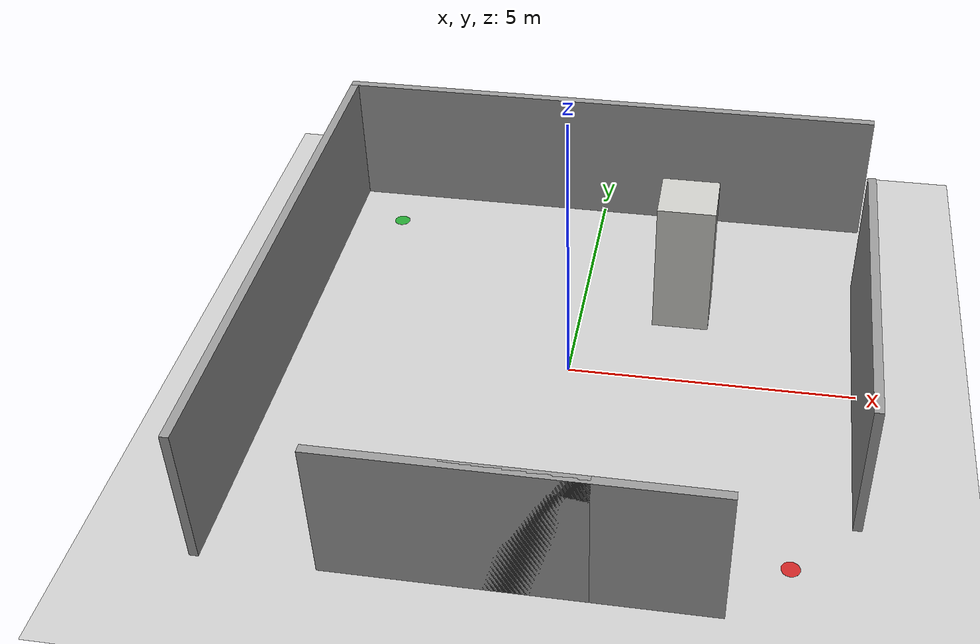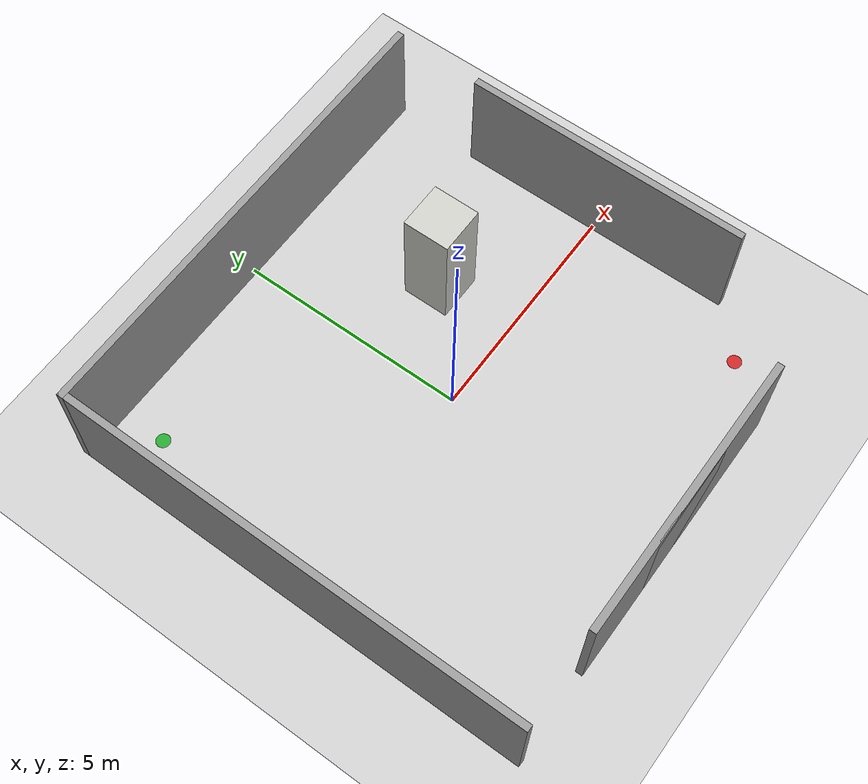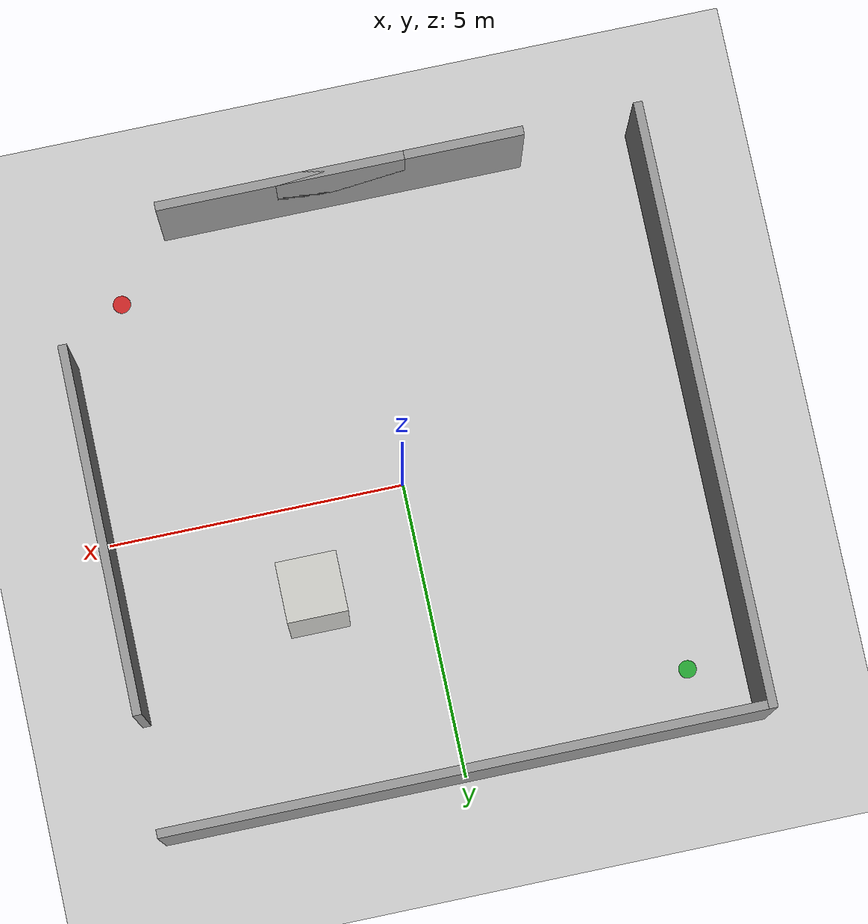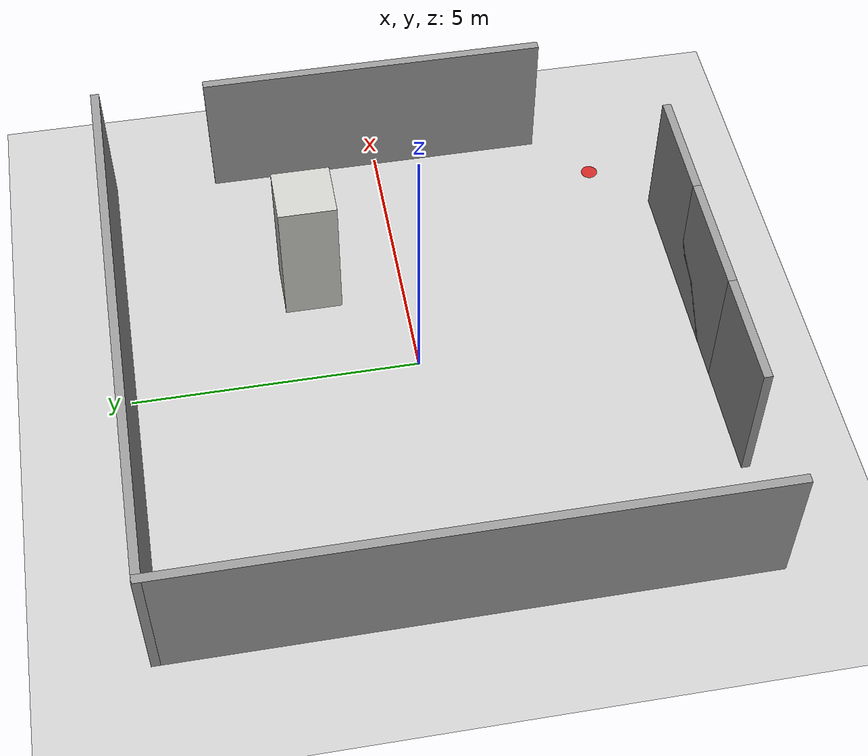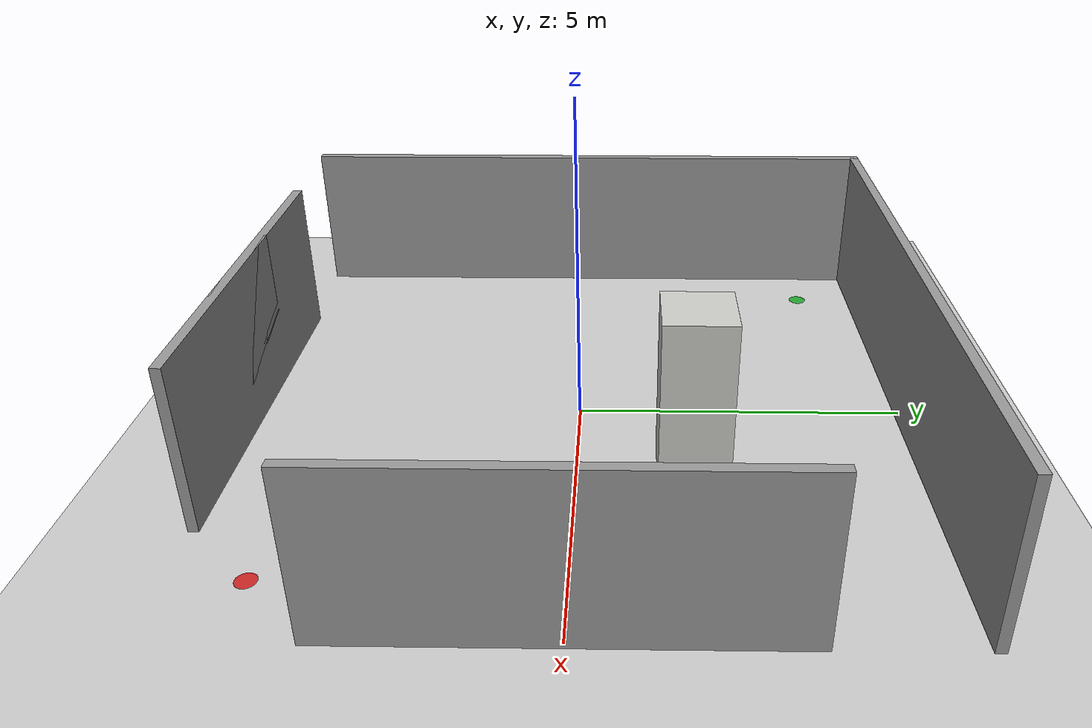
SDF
<sdf version="1.6">
 <world name="default">
  <light name="sun" type="directional">
   <pose>0 0 10 0 -0 0</pose>
   <diffuse>0.8 0.8 0.8 1</diffuse>
   <specular>0.2 0.2 0.2 1</specular>
   <attenuation>
    <range>1000</range>
    <constant>0.9</constant>
    <linear>0.01</linear>
    <quadratic>0.001</quadratic>
   </attenuation>
   <direction>-0.5 0.1 -0.9</direction>
  </light>
  <model name="ground_plane">
   <static>1</static>
   <link name="link">
    <collision name="collision">
     <geometry><plane><normal>0 0 1</normal><size>100 100</size></plane></geometry>
     <surface><friction><ode><mu>100</mu><mu2>50</mu2></ode></friction></surface>
    </collision>
    <visual name="visual">
     <cast_shadows>0</cast_shadows>
     <geometry><plane><normal>0 0 1</normal><size>100 100</size></plane></geometry>
     <material>
      <script><uri>file://media/materials/scripts/gazebo.material</uri><name>Gazebo/Grey</name></script>
     </material>
    </visual>
   </link>
  </model>
  <gravity>0 0 -9.8</gravity>
  <magnetic_field>6e-06 2.3e-05 -4.2e-05</magnetic_field>
  <atmosphere type="adiabatic"/>
  <physics name="default_physics" default="0" type="ode">
   <max_step_size>0.001</max_step_size>
   <real_time_factor>1</real_time_factor>
   <real_time_update_rate>1000</real_time_update_rate>
  </physics>
  <scene><ambient>0.4 0.4 0.4 1</ambient><background>0.7 0.7 0.7 1</background><shadows>1</shadows></scene>
  <spherical_coordinates>
   <surface_model>EARTH_WGS84</surface_model>
   <latitude_deg>0</latitude_deg>
   <longitude_deg>0</longitude_deg>
   <elevation>0</elevation>
   <heading_deg>0</heading_deg>
  </spherical_coordinates>
  <model name="Untitled">
   <link name="Wall_0">
    <collision name="Wall_0_Collision">
     <geometry><box><size>10.15 0.15 2.5</size></box></geometry>
     <pose>0 0 1.25 0 -0 0</pose>
    </collision>
    <visual name="Wall_0_Visual">
     <pose>0 0 1.25 0 -0 0</pose>
     <geometry><box><size>10.15 0.15 2.5</size></box></geometry>
     <material>
      <script><uri>file://media/materials/scripts/gazebo.material</uri><name>Gazebo/Grey</name></script>
      <ambient>1 1 1 1</ambient>
     </material>
     <meta><layer>0</layer></meta>
    </visual>
    <pose>-5 0 0 0 -0 -1.5708</pose>
   </link>
   <link name="Wall_1">
    <collision name="Wall_1_Collision">
     <geometry><box><size>6.15 0.15 2.5</size></box></geometry>
     <pose>0 0 1.25 0 -0 0</pose>
    </collision>
    <visual name="Wall_1_Visual">
     <pose>0 0 1.25 0 -0 0</pose>
     <geometry><box><size>6.15 0.15 2.5</size></box></geometry>
     <material>
      <script><uri>file://media/materials/scripts/gazebo.material</uri><name>Gazebo/Grey</name></script>
      <ambient>1 1 1 1</ambient>
     </material>
     <meta><layer>0</layer></meta>
    </visual>
    <pose>0 -5 0 0 -0 0</pose>
   </link>
   <link name="Wall_2">
    <collision name="Wall_2_Collision">
     <geometry><box><size>6.15 0.15 2.5</size></box></geometry>
     <pose>0 0 1.25 0 -0 0</pose>
    </collision>
    <visual name="Wall_2_Visual">
     <pose>0 0 1.25 0 -0 0</pose>
     <geometry><box><size>6.15 0.15 2.5</size></box></geometry>
     <material>
      <script><uri>file://media/materials/scripts/gazebo.material</uri><name>Gazebo/Grey</name></script>
      <ambient>1 1 1 1</ambient>
     </material>
     <meta><layer>0</layer></meta>
    </visual>
    <pose>5 0 0 0 -0 1.5708</pose>
   </link>
   <link name="Wall_3">
    <collision name="Wall_3_Collision">
     <geometry><box><size>10.15 0.15 2.5</size></box></geometry>
     <pose>0 0 1.25 0 -0 0</pose>
    </collision>
    <visual name="Wall_3_Visual">
     <pose>0 0 1.25 0 -0 0</pose>
     <geometry><box><size>10.15 0.15 2.5</size></box></geometry>
     <material>
      <script><uri>file://media/materials/scripts/gazebo.material</uri><name>Gazebo/Grey</name></script>
      <ambient>1 1 1 1</ambient>
     </material>
     <meta><layer>0</layer></meta>
    </visual>
    <pose>0 5 0 0 -0 3.14159</pose>
   </link>
   <link name="Wall_4">
    <collision name="Wall_4_Collision">
     <geometry><box><size>2.15 0.15 2.5</size></box></geometry>
     <pose>0 0 1.25 0 -0 0</pose>
    </collision>
    <visual name="Wall_4_Visual">
     <pose>0 0 1.25 0 -0 0</pose>
     <geometry><box><size>2.15 0.15 2.5</size></box></geometry>
     <material>
      <script><uri>file://media/materials/scripts/gazebo.material</uri><name>Gazebo/Grey</name></script>
      <ambient>1 1 1 1</ambient>
     </material>
     <meta><layer>0</layer></meta>
    </visual>
    <pose>0 -5 0 0 -0 0</pose>
   </link>
   <link name="Wall_5">
    <collision name="Wall_5_Collision">
     <geometry><box><size>2.15 0.15 2.5</size></box></geometry>
     <pose>0 0 1.25 0 -0 0</pose>
    </collision>
    <visual name="Wall_5_Visual">
     <pose>0 0 1.25 0 -0 0</pose>
     <geometry><box><size>2.15 0.15 2.5</size></box></geometry>
     <material>
      <script><uri>file://media/materials/scripts/gazebo.material</uri><name>Gazebo/Grey</name></script>
      <ambient>1 1 1 1</ambient>
     </material>
     <meta><layer>0</layer></meta>
    </visual>
    <pose>0 -5 0 0 -0 0</pose>
   </link>
   <link name="Wall_6">
    <collision name="Wall_6_Collision">
     <geometry><box><size>6.15 0.15 2.5</size></box></geometry>
     <pose>0 0 1.25 0 -0 0</pose>
    </collision>
    <visual name="Wall_6_Visual">
     <pose>0 0 1.25 0 -0 0</pose>
     <geometry><box><size>6.15 0.15 2.5</size></box></geometry>
     <material>
      <script><uri>file://media/materials/scripts/gazebo.material</uri><name>Gazebo/Grey</name></script>
      <ambient>1 1 1 1</ambient>
     </material>
     <meta><layer>0</layer></meta>
    </visual>
    <pose>0 -5 0 0 -0 0</pose>
   </link>
   <link name="Wall_7">
    <collision name="Wall_7_Collision">
     <geometry><box><size>6.15 0.15 2.5</size></box></geometry>
     <pose>0 0 1.25 0 -0 0</pose>
    </collision>
    <visual name="Wall_7_Visual">
     <pose>0 0 1.25 0 -0 0</pose>
     <geometry><box><size>6.15 0.15 2.5</size></box></geometry>
     <material>
      <script><uri>file://media/materials/scripts/gazebo.material</uri><name>Gazebo/Grey</name></script>
      <ambient>1 1 1 1</ambient>
     </material>
     <meta><layer>0</layer></meta>
    </visual>
    <pose>0 -5 0 0 -0 0</pose>
   </link>
   <static>1</static>
  </model>
  <model name="unit_box">
   <link name="link">
    <inertial>
     <mass>1</mass>
     <inertia>
      <ixx>0.166667</ixx>
      <ixy>0</ixy>
      <ixz>0</ixz>
      <iyy>0.166667</iyy>
      <iyz>0</iyz>
      <izz>0.166667</izz>
     </inertia>
    </inertial>
    <visual name="visual">
     <geometry><box><size>1 1 2.5</size></box></geometry>
     <material>
      <script><name>Gazebo/CeilingTiled</name><uri>file://media/materials/scripts/gazebo.material</uri></script>
      <shader type="pixel"><normal_map>__default__</normal_map></shader>
      <ambient>0.3 0.3 0.3 1</ambient>
      <diffuse>0.7 0.7 0.7 1</diffuse>
      <specular>0.01 0.01 0.01 1</specular>
      <emissive>0 0 0 1</emissive>
     </material>
    </visual>
    <collision name="collision">
     <geometry><box><size>1 1 2.5</size></box></geometry>
     <surface>
      <friction>
       <ode><mu>1</mu><mu2>1</mu2><fdir1>0 0 0</fdir1><slip1>0</slip1><slip2>0</slip2></ode>
       <torsional>
        <coefficient>1</coefficient>
        <patch_radius>0</patch_radius>
        <surface_radius>0</surface_radius>
        <use_patch_radius>1</use_patch_radius>
        <ode><slip>0</slip></ode>
       </torsional>
      </friction>
      <bounce><restitution_coefficient>0</restitution_coefficient><threshold>1e+06</threshold></bounce>
      <contact>
       <collide_without_contact>0</collide_without_contact>
       <collide_without_contact_bitmask>1</collide_without_contact_bitmask>
       <collide_bitmask>1</collide_bitmask>
       <ode>
        <soft_cfm>0</soft_cfm>
        <soft_erp>0.2</soft_erp>
        <kp>1e+13</kp>
        <kd>1</kd>
        <max_vel>0.01</max_vel>
        <min_depth>0</min_depth>
       </ode>
       <bullet>
        <split_impulse>1</split_impulse>
        <split_impulse_penetration_threshold>-0.01</split_impulse_penetration_threshold>
        <soft_cfm>0</soft_cfm>
        <soft_erp>0.2</soft_erp>
        <kp>1e+13</kp>
        <kd>1</kd>
       </bullet>
      </contact>
     </surface>
    </collision>
   </link>
   <static>0</static>
   <pose>1.84586 1.65412 1.5 2e-06 -0 0.000122</pose>
  </model>
  <model name="goal">
   <pose>4 -4 0.000 -3e-06 -3e-06 0</pose>
   <link name="link">
    <inertial>
     <mass>1</mass>
     <inertia><ixx>0.145833</ixx><ixy>0</ixy><ixz>0</ixz><iyy>0.145833</iyy><iyz>0</iyz><izz>0.125</izz></inertia>
    </inertial>
    <collision name="collision">
     <geometry><cylinder><radius>0.000499864</radius><length>0.000351</length></cylinder></geometry>
    </collision>
    <visual name="visual">
     <geometry><cylinder><radius>0.149959</radius><length>0.000351</length></cylinder></geometry>
     <material>
      <script><name>Gazebo/Red</name><uri>file://media/materials/scripts/gazebo.material</uri></script>
     </material>
    </visual>
   </link>
  </model>
  <model name="start">
   <pose>-4 4 0.000 -3e-06 -3e-06 0</pose>
   <link name="link">
    <inertial>
     <mass>1</mass>
     <inertia><ixx>0.145833</ixx><ixy>0</ixy><ixz>0</ixz><iyy>0.145833</iyy><iyz>0</iyz><izz>0.125</izz></inertia>
    </inertial>
    <collision name="collision">
     <geometry><cylinder><radius>0.000499864</radius><length>0.000351</length></cylinder></geometry>
    </collision>
    <visual name="visual">
     <geometry><cylinder><radius>0.149959</radius><length>0.000351</length></cylinder></geometry>
     <material>
      <script><name>Gazebo/Green</name><uri>file://media/materials/scripts/gazebo.material</uri></script>
     </material>
    </visual>
   </link>
  </model>
 </world>
</sdf>
